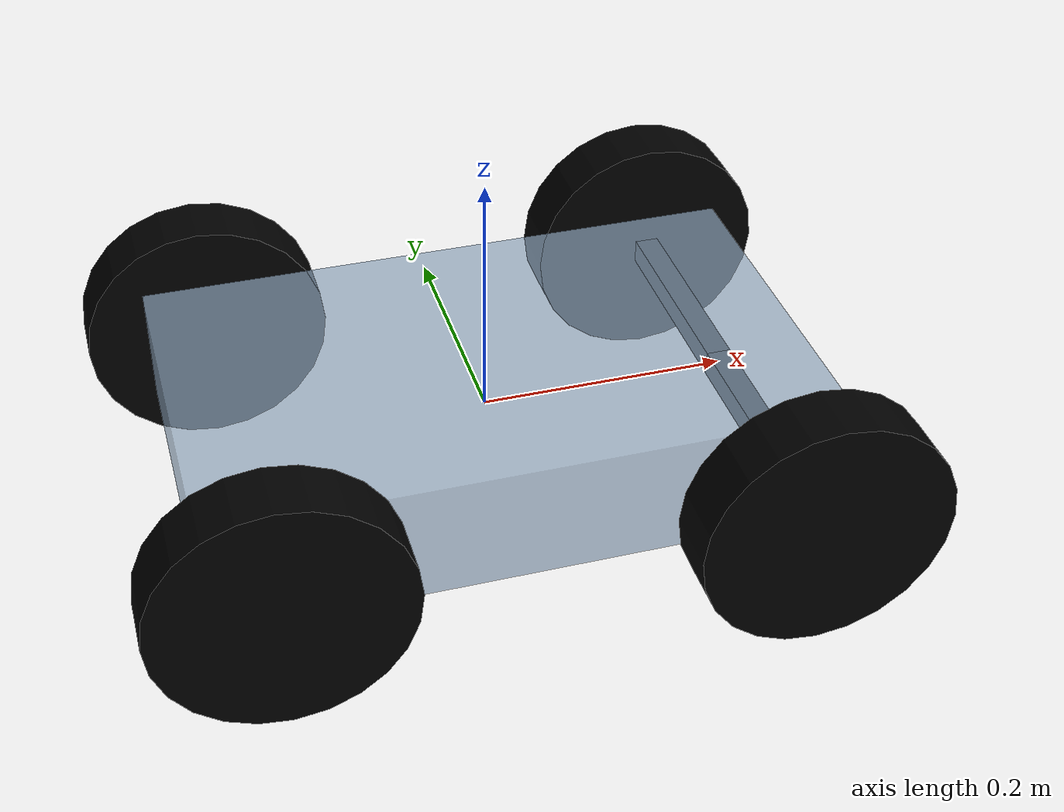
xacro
<?xml version="1.0"?>
<robot name="simplecar" xmlns:xacro="http://www.ros.org/wiki/xacro">

    <material name="black">
        <color rgba="0 0 0 1" />
    </material>
    <material name="blue">
        <color rgba="0.6 0.7 0.8 0.7" />
    </material>

    <!-- Base Frame of Car -->
    <link name="base_link">
        <collision name="base_link_collision">
            <geometry>
                <box size="0.5 0.3 0.1" />
            </geometry>
        </collision>

        <visual name="base_link_visual">
            <geometry>
                <box size="0.5 0.3 0.1" />
            </geometry>
            <material name="blue" />
        </visual>
    </link>

    <!-- Left Front Wheel -->
    <link name="left_front_wheel">
        <collision name="left_front_wheel_collision">
            <geometry>
                <cylinder length="0.05" radius="0.1" />
            </geometry>
            <origin rpy="1.57075 1.57075 0" />
            <material name="black" />
        </collision>

        <visual name="left_front_wheel_visual">
            <geometry>
                <cylinder length="0.05" radius="0.1" />
            </geometry>
            <origin rpy="1.57075 1.57075 0" />
            <material name="black" />
        </visual>
    </link>
    <joint name="left_hinge_to_left_front_wheel" type="continuous">
        <parent link="left_hinge" />
        <child link="left_front_wheel" />
        <axis xyz="0 1 0" />
        <origin xyz="0 0.2 0" />
    </joint>
    <!-- Left Front Wheel - Hinge -->
    <link name="left_hinge">
        <collision name="left_hinge_collision">
            <geometry>
                <box size="0.20 0.02 0.02" />
            </geometry>
            <origin xyz="0 0.1 0 " rpy="0 0 1.57075" />
            <material name="black" />
        </collision>

        <visual name="left_hinge_visual">
            <geometry>
                <box size="0.20 0.02 0.02" />
            </geometry>
            <origin xyz="0 0.1 0 " rpy="0 0 1.57075" />
            <material name="black" />
        </visual>
    </link>
    <joint name="base_to_left_hinge" type="revolute">
        <parent link="base_link" />
        <child link="left_hinge" />
        <axis xyz="0 0 1" />
        <origin xyz="0.2 0.0 0" />
        <limit effort="100" lower="-0.5" upper="0.5" velocity="100" />
    </joint>
    <!-- Right Front Wheel -->
    <link name="right_front_wheel">
        <collision name="right_front_wheel_collision">
            <geometry>
                <cylinder length="0.05" radius="0.1" />
            </geometry>
            <origin rpy="-1.57075 -1.57075 0" />
            <material name="black" />
        </collision>
        <visual name="right_front_wheel_visual">
            <geometry>
                <cylinder length="0.05" radius="0.1" />
            </geometry>
            <origin rpy="-1.57075 -1.57075 0" />
            <material name="black" />
        </visual>
    </link>
    <joint name="right_hinge_to_right_front_wheel" type="continuous">
        <parent link="right_hinge" />
        <child link="right_front_wheel" />
        <axis xyz="0 1 0" />
        <origin xyz="0 -0.2 0" />
    </joint>
    <!-- Right Front Wheel - Hinge -->
    <link name="right_hinge">
        <collision name="right_hinge_collision">
            <geometry>
                <box size="0.20 0.02 0.02" />
            </geometry>
            <origin xyz="0 -0.1 0 " rpy="0 0 -1.57075" />
            <material name="black" />
        </collision>
        <visual name="right_hinge_visual">
            <geometry>
                <box size="0.20 0.02 0.02" />
            </geometry>
            <origin xyz="0 -0.1 0 " rpy="0 0 -1.57075" />
            <material name="black" />
        </visual>
    </link>
    <joint name="base_to_right_hinge" type="revolute">
        <parent link="base_link" />
        <child link="right_hinge" />
        <axis xyz="0 0 1" />
        <origin xyz="0.2 0 0" />
        <limit effort="100" lower="-0.5" upper="0.5" velocity="100" />
    </joint>

    <!-- Left Back Wheel -->
    <link name="left_back_wheel">
        <collision name="left_back_wheel_collision">
            <geometry>
                <cylinder length="0.05" radius="0.1" />
            </geometry>
            <origin rpy="1.57075 1.57075 0" />
            <material name="black" />
        </collision>
        <visual name="left_back_wheel_visual">
            <geometry>
                <cylinder length="0.05" radius="0.1" />
            </geometry>
            <origin rpy="1.57075 1.57075 0" />
            <material name="black" />
        </visual>
    </link>
    <joint name="base_to_left_back_wheel" type="continuous">
        <parent link="base_link" />
        <child link="left_back_wheel" />
        <axis xyz="0 1 0" />
        <origin xyz="-0.2 0.175 0" />
    </joint>
    <!-- Right Back Wheel -->
    <link name="right_back_wheel">
        <collision name="right_back_wheel_collision">
            <geometry>
                <cylinder length="0.05" radius="0.1" />
            </geometry>
            <origin rpy="-1.57075 -1.57075 0" />
            <material name="black" />
        </collision>
        <visual name="right_back_wheel_visual">
            <geometry>
                <cylinder length="0.05" radius="0.1" />
            </geometry>
            <origin rpy="-1.57075 -1.57075 0" />
            <material name="black" />
        </visual>
    </link>
    <joint name="base_to_right_back_wheel" type="continuous">
        <parent link="base_link" />
        <child link="right_back_wheel" />
        <axis xyz="0 1 0" />
        <origin xyz="-0.2 -0.175 0" />
    </joint>

    <!-- gazebo plugins for control and odometry ground truth-->
    <gazebo>
        <plugin name="gazebo_ros_control" filename="libgazebo_ros_control.so" />
        <plugin name="gazebo_ros_p3d" filename="libgazebo_ros_p3d.so">
            <frameName>map</frameName>
            <bodyName>base_link</bodyName>
            <topicName>odom_truth</topicName>
            <updateRate>30.0</updateRate>
        </plugin>
    </gazebo>

</robot>
